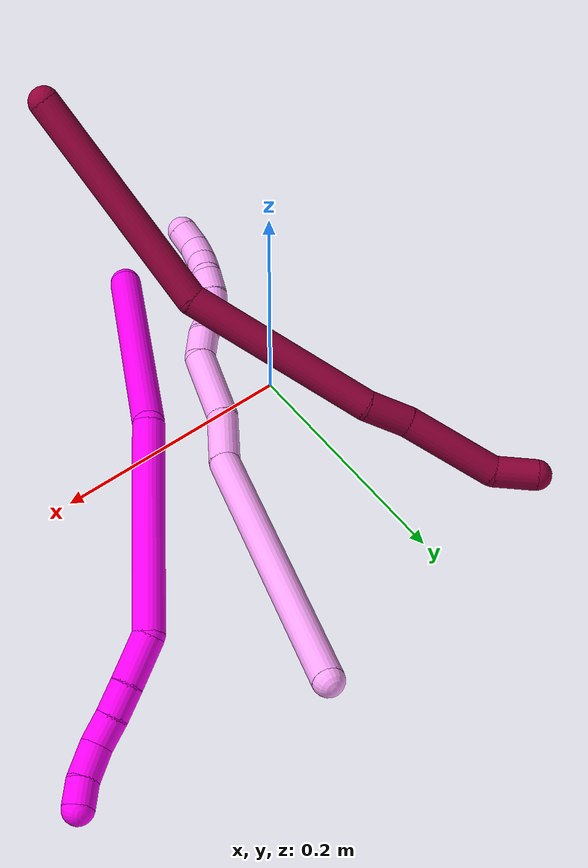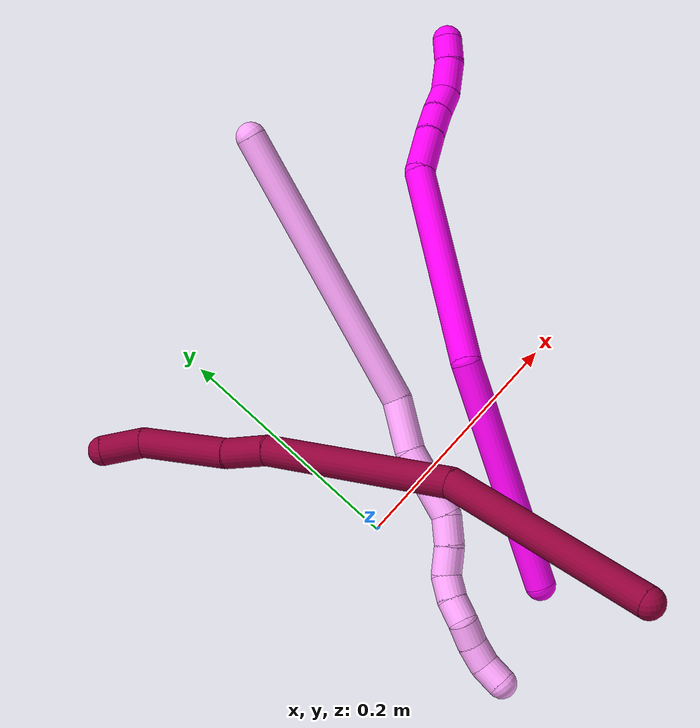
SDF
<sdf version="1.7">
 <world name="default">
  <model name="photoneo_s_sensor">
   <static>1</static>
   <pose>0 0 2 1.57079 1.57079 3.14159</pose>
   <link name="link">
    <inertial><mass>0.1</mass></inertial>
    <sensor name="sensor" type="depth">
     <update_rate>30</update_rate>
     <camera>
      <horizontal_fov>1.22</horizontal_fov>
      <image><width>1920</width><height>1200</height><format>B8G8R8</format></image>
      <clip><near>0.1</near><far>4</far></clip>
      <depth_camera><output>points</output></depth_camera>
     </camera>
     <plugin name="camera_plugin" filename="libgazebo_ros_depth_camera.so">
      <baseline>0.2</baseline>
      <alwaysOn>1</alwaysOn>
      <updateRate>0.0</updateRate>
      <cameraName>camera_ir</cameraName>
      <imageTopicName>/camera/color/image_raw</imageTopicName>
      <cameraInfoTopicName>/camera/color/camera_info</cameraInfoTopicName>
      <depthImageTopicName>/camera/depth/image_raw</depthImageTopicName>
      <depthImageCameraInfoTopicName>/camera/depth/camera_info</depthImageCameraInfoTopicName>
      <pointCloudTopicName>/camera/depth/points</pointCloudTopicName>
      <frameName>fr_optical</frameName>
      <pointCloudCutoff>0.1</pointCloudCutoff>
      <pointCloudCutoffMax>2.0</pointCloudCutoffMax>
      <distortionK1>0</distortionK1>
      <distortionK2>0</distortionK2>
      <distortionK3>0</distortionK3>
      <distortionT1>0</distortionT1>
      <distortionT2>0</distortionT2>
      <CxPrime>0</CxPrime>
      <Cx>0</Cx>
      <Cy>0</Cy>
      <focalLength>0</focalLength>
      <hackBaseline>0</hackBaseline>
     </plugin>
    </sensor>
   </link>
  </model>
  <model name="bin">
   <static>1</static>
   <link name="bottom">
    <collision name="collision-bottom">
     <pose>0 0 -0.01 0 -0 0</pose>
     <geometry><box><size>0.8 0.6 0.02</size></box></geometry>
     <surface>
      <friction><ode><mu>100</mu><mu2>100</mu2></ode></friction>
      <contact><collide_bitmask>65535</collide_bitmask></contact>
     </surface>
    </collision>
   </link>
   <link name="west_wall">
    <collision name="collision-west_wall">
     <pose>-0.41 0 0.1 0 -0 0</pose>
     <geometry><box><size>0.02 0.6 0.2</size></box></geometry>
     <surface>
      <friction><ode><mu>100</mu><mu2>100</mu2></ode></friction>
      <contact><collide_bitmask>65535</collide_bitmask></contact>
     </surface>
    </collision>
   </link>
   <link name="east_wall">
    <collision name="collision-east_wall">
     <pose>0.41 0 0.1 0 -0 0</pose>
     <geometry><box><size>0.02 0.6 0.2</size></box></geometry>
     <surface>
      <friction><ode><mu>100</mu><mu2>100</mu2></ode></friction>
      <contact><collide_bitmask>65535</collide_bitmask></contact>
     </surface>
    </collision>
   </link>
   <link name="south_wall">
    <collision name="collision-south_wall">
     <pose>0 -0.31 0.1 0 -0 0</pose>
     <geometry><box><size>0.8 0.02 0.2</size></box></geometry>
     <surface>
      <friction><ode><mu>100</mu><mu2>100</mu2></ode></friction>
      <contact><collide_bitmask>65535</collide_bitmask></contact>
     </surface>
    </collision>
   </link>
   <link name="north_wall">
    <collision name="collision-north_wall">
     <pose>0 0.31 0.1 0 -0 0</pose>
     <geometry><box><size>0.8 0.02 0.2</size></box></geometry>
     <surface>
      <friction><ode><mu>100</mu><mu2>100</mu2></ode></friction>
      <contact><collide_bitmask>65535</collide_bitmask></contact>
     </surface>
    </collision>
   </link>
  </model>
  <model name="4">
   <static>0</static>
   <link name="4">
    <collision name="collision-cylinder-e_1_1_4">
     <pose>-0.011661 -0.017821 -0.121189 2.99559 -0.094911 -1.15187</pose>
     <geometry><cylinder><radius>0.0125</radius><length>0.246092</length></cylinder></geometry>
     <surface>
      <friction><ode><mu>1.16</mu><mu2>1.16</mu2><slip1>0</slip1><slip2>0</slip2></ode></friction>
      <contact><ode><kp>1e+06</kp><kd>1</kd><max_vel>0</max_vel><min_depth>0.001</min_depth></ode></contact>
     </surface>
    </collision>
    <visual name="visual-cylinder-e_1_1_4">
     <pose>-0.011661 -0.017821 -0.121189 2.99559 -0.094911 -1.15187</pose>
     <geometry><cylinder><radius>0.0125</radius><length>0.246092</length></cylinder></geometry>
     <material><ambient>1 0.65098 0.996078 1</ambient></material>
    </visual>
    <collision name="collision-cylinder-e_2_4_5">
     <pose>-0.024443 -0.04676 -0.261564 2.61641 -0.050507 -0.187391</pose>
     <geometry><cylinder><radius>0.0125</radius><length>0.044406</length></cylinder></geometry>
     <surface>
      <friction><ode><mu>1.16</mu><mu2>1.16</mu2><slip1>0</slip1><slip2>0</slip2></ode></friction>
      <contact><ode><kp>1e+06</kp><kd>1</kd><max_vel>0</max_vel><min_depth>0.001</min_depth></ode></contact>
     </surface>
    </collision>
    <visual name="visual-cylinder-e_2_4_5">
     <pose>-0.024443 -0.04676 -0.261564 2.61641 -0.050507 -0.187391</pose>
     <geometry><cylinder><radius>0.0125</radius><length>0.044406</length></cylinder></geometry>
     <material><ambient>1 0.65098 0.996078 1</ambient></material>
    </visual>
    <collision name="collision-cylinder-e_3_5_6">
     <pose>-0.022263 -0.066869 -0.309384 2.83734 0.109538 0.68685</pose>
     <geometry><cylinder><radius>0.0125</radius><length>0.060387</length></cylinder></geometry>
     <surface>
      <friction><ode><mu>1.16</mu><mu2>1.16</mu2><slip1>0</slip1><slip2>0</slip2></ode></friction>
      <contact><ode><kp>1e+06</kp><kd>1</kd><max_vel>0</max_vel><min_depth>0.001</min_depth></ode></contact>
     </surface>
    </collision>
    <visual name="visual-cylinder-e_3_5_6">
     <pose>-0.022263 -0.066869 -0.309384 2.83734 0.109538 0.68685</pose>
     <geometry><cylinder><radius>0.0125</radius><length>0.060387</length></cylinder></geometry>
     <material><ambient>1 0.65098 0.996078 1</ambient></material>
    </visual>
    <collision name="collision-cylinder-e_4_6_7">
     <pose>-0.021193 -0.082836 -0.347954 2.52954 -0.181739 -0.56156</pose>
     <geometry><cylinder><radius>0.0125</radius><length>0.024687</length></cylinder></geometry>
     <surface>
      <friction><ode><mu>1.16</mu><mu2>1.16</mu2><slip1>0</slip1><slip2>0</slip2></ode></friction>
      <contact><ode><kp>1e+06</kp><kd>1</kd><max_vel>0</max_vel><min_depth>0.001</min_depth></ode></contact>
     </surface>
    </collision>
    <visual name="visual-cylinder-e_4_6_7">
     <pose>-0.021193 -0.082836 -0.347954 2.52954 -0.181739 -0.56156</pose>
     <geometry><cylinder><radius>0.0125</radius><length>0.024687</length></cylinder></geometry>
     <material><ambient>1 0.65098 0.996078 1</ambient></material>
    </visual>
    <collision name="collision-cylinder-e_5_7_8">
     <pose>-0.027912 -0.097386 -0.366355 2.41157 -0.37627 -0.924443</pose>
     <geometry><cylinder><radius>0.0125</radius><length>0.024427</length></cylinder></geometry>
     <surface>
      <friction><ode><mu>1.16</mu><mu2>1.16</mu2><slip1>0</slip1><slip2>0</slip2></ode></friction>
      <contact><ode><kp>1e+06</kp><kd>1</kd><max_vel>0</max_vel><min_depth>0.001</min_depth></ode></contact>
     </surface>
    </collision>
    <visual name="visual-cylinder-e_5_7_8">
     <pose>-0.027912 -0.097386 -0.366355 2.41157 -0.37627 -0.924443</pose>
     <geometry><cylinder><radius>0.0125</radius><length>0.024427</length></cylinder></geometry>
     <material><ambient>1 0.65098 0.996078 1</ambient></material>
    </visual>
    <collision name="collision-cylinder-e_6_8_9">
     <pose>-0.032231 -0.110406 -0.383206 2.56575 0.016931 0.057156</pose>
     <geometry><cylinder><radius>0.0125</radius><length>0.020001</length></cylinder></geometry>
     <surface>
      <friction><ode><mu>1.16</mu><mu2>1.16</mu2><slip1>0</slip1><slip2>0</slip2></ode></friction>
      <contact><ode><kp>1e+06</kp><kd>1</kd><max_vel>0</max_vel><min_depth>0.001</min_depth></ode></contact>
     </surface>
    </collision>
    <visual name="visual-cylinder-e_6_8_9">
     <pose>-0.032231 -0.110406 -0.383206 2.56575 0.016931 0.057156</pose>
     <geometry><cylinder><radius>0.0125</radius><length>0.020001</length></cylinder></geometry>
     <material><ambient>1 0.65098 0.996078 1</ambient></material>
    </visual>
    <collision name="collision-cylinder-e_7_9_10">
     <pose>-0.03045 -0.119923 -0.400583 2.71627 0.161839 0.718546</pose>
     <geometry><cylinder><radius>0.0125</radius><length>0.020001</length></cylinder></geometry>
     <surface>
      <friction><ode><mu>1.16</mu><mu2>1.16</mu2><slip1>0</slip1><slip2>0</slip2></ode></friction>
      <contact><ode><kp>1e+06</kp><kd>1</kd><max_vel>0</max_vel><min_depth>0.001</min_depth></ode></contact>
     </surface>
    </collision>
    <visual name="visual-cylinder-e_7_9_10">
     <pose>-0.03045 -0.119923 -0.400583 2.71627 0.161839 0.718546</pose>
     <geometry><cylinder><radius>0.0125</radius><length>0.020001</length></cylinder></geometry>
     <material><ambient>1 0.65098 0.996078 1</ambient></material>
    </visual>
    <collision name="collision-cylinder-e_8_10_11">
     <pose>-0.031013 -0.12581 -0.419164 2.95464 -0.219201 -1.73034</pose>
     <geometry><cylinder><radius>0.0125</radius><length>0.02</length></cylinder></geometry>
     <surface>
      <friction><ode><mu>1.16</mu><mu2>1.16</mu2><slip1>0</slip1><slip2>0</slip2></ode></friction>
      <contact><ode><kp>1e+06</kp><kd>1</kd><max_vel>0</max_vel><min_depth>0.001</min_depth></ode></contact>
     </surface>
    </collision>
    <visual name="visual-cylinder-e_8_10_11">
     <pose>-0.031013 -0.12581 -0.419164 2.95464 -0.219201 -1.73034</pose>
     <geometry><cylinder><radius>0.0125</radius><length>0.02</length></cylinder></geometry>
     <material><ambient>1 0.65098 0.996078 1</ambient></material>
    </visual>
    <collision name="collision-cylinder-e_9_11_12">
     <pose>-0.033527 -0.129374 -0.438594 2.9656 -0.033984 -0.380571</pose>
     <geometry><cylinder><radius>0.0125</radius><length>0.02</length></cylinder></geometry>
     <surface>
      <friction><ode><mu>1.16</mu><mu2>1.16</mu2><slip1>0</slip1><slip2>0</slip2></ode></friction>
      <contact><ode><kp>1e+06</kp><kd>1</kd><max_vel>0</max_vel><min_depth>0.001</min_depth></ode></contact>
     </surface>
    </collision>
    <visual name="visual-cylinder-e_9_11_12">
     <pose>-0.033527 -0.129374 -0.438594 2.9656 -0.033984 -0.380571</pose>
     <geometry><cylinder><radius>0.0125</radius><length>0.02</length></cylinder></geometry>
     <material><ambient>1 0.65098 0.996078 1</ambient></material>
    </visual>
    <collision name="collision-cylinder-e_10_12_2">
     <pose>-0.030937 -0.132455 -0.457902 3.0019 0.297339 2.26765</pose>
     <geometry><cylinder><radius>0.0125</radius><length>0.02</length></cylinder></geometry>
     <surface>
      <friction><ode><mu>1.16</mu><mu2>1.16</mu2><slip1>0</slip1><slip2>0</slip2></ode></friction>
      <contact><ode><kp>1e+06</kp><kd>1</kd><max_vel>0</max_vel><min_depth>0.001</min_depth></ode></contact>
     </surface>
    </collision>
    <visual name="visual-cylinder-e_10_12_2">
     <pose>-0.030937 -0.132455 -0.457902 3.0019 0.297339 2.26765</pose>
     <geometry><cylinder><radius>0.0125</radius><length>0.02</length></cylinder></geometry>
     <material><ambient>1 0.65098 0.996078 1</ambient></material>
    </visual>
    <collision name="collision-sphere-2">
     <pose>-0.028008 -0.133786 -0.46737 0 -0 0</pose>
     <geometry><sphere><radius>0.0125</radius></sphere></geometry>
     <surface>
      <friction><ode><mu>1.16</mu><mu2>1.16</mu2><slip1>0</slip1><slip2>0</slip2></ode></friction>
      <contact><ode><kp>1e+06</kp><kd>1</kd><max_vel>0</max_vel><min_depth>0.001</min_depth></ode></contact>
     </surface>
    </collision>
    <visual name="visual-sphere-2">
     <pose>-0.028008 -0.133786 -0.46737 0 -0 0</pose>
     <geometry><sphere><radius>0.0125</radius></sphere></geometry>
     <material><ambient>1 0.65098 0.996078 1</ambient></material>
    </visual>
    <collision name="collision-sphere-12">
     <pose>-0.033867 -0.131124 -0.448434 0 -0 0</pose>
     <geometry><sphere><radius>0.0125</radius></sphere></geometry>
     <surface>
      <friction><ode><mu>1.16</mu><mu2>1.16</mu2><slip1>0</slip1><slip2>0</slip2></ode></friction>
      <contact><ode><kp>1e+06</kp><kd>1</kd><max_vel>0</max_vel><min_depth>0.001</min_depth></ode></contact>
     </surface>
    </collision>
    <visual name="visual-sphere-12">
     <pose>-0.033867 -0.131124 -0.448434 0 -0 0</pose>
     <geometry><sphere><radius>0.0125</radius></sphere></geometry>
     <material><ambient>1 0.65098 0.996078 1</ambient></material>
    </visual>
    <collision name="collision-sphere-11">
     <pose>-0.033188 -0.127624 -0.428754 0 -0 0</pose>
     <geometry><sphere><radius>0.0125</radius></sphere></geometry>
     <surface>
      <friction><ode><mu>1.16</mu><mu2>1.16</mu2><slip1>0</slip1><slip2>0</slip2></ode></friction>
      <contact><ode><kp>1e+06</kp><kd>1</kd><max_vel>0</max_vel><min_depth>0.001</min_depth></ode></contact>
     </surface>
    </collision>
    <visual name="visual-sphere-11">
     <pose>-0.033188 -0.127624 -0.428754 0 -0 0</pose>
     <geometry><sphere><radius>0.0125</radius></sphere></geometry>
     <material><ambient>1 0.65098 0.996078 1</ambient></material>
    </visual>
    <collision name="collision-sphere-10">
     <pose>-0.028839 -0.123995 -0.409573 0 -0 0</pose>
     <geometry><sphere><radius>0.0125</radius></sphere></geometry>
     <surface>
      <friction><ode><mu>1.16</mu><mu2>1.16</mu2><slip1>0</slip1><slip2>0</slip2></ode></friction>
      <contact><ode><kp>1e+06</kp><kd>1</kd><max_vel>0</max_vel><min_depth>0.001</min_depth></ode></contact>
     </surface>
    </collision>
    <visual name="visual-sphere-10">
     <pose>-0.028839 -0.123995 -0.409573 0 -0 0</pose>
     <geometry><sphere><radius>0.0125</radius></sphere></geometry>
     <material><ambient>1 0.65098 0.996078 1</ambient></material>
    </visual>
    <collision name="collision-sphere-9">
     <pose>-0.032061 -0.115851 -0.391592 0 -0 0</pose>
     <geometry><sphere><radius>0.0125</radius></sphere></geometry>
     <surface>
      <friction><ode><mu>1.16</mu><mu2>1.16</mu2><slip1>0</slip1><slip2>0</slip2></ode></friction>
      <contact><ode><kp>1e+06</kp><kd>1</kd><max_vel>0</max_vel><min_depth>0.001</min_depth></ode></contact>
     </surface>
    </collision>
    <visual name="visual-sphere-9">
     <pose>-0.032061 -0.115851 -0.391592 0 -0 0</pose>
     <geometry><sphere><radius>0.0125</radius></sphere></geometry>
     <material><ambient>1 0.65098 0.996078 1</ambient></material>
    </visual>
    <collision name="collision-sphere-4">
     <pose>-0.023322 -0.035643 -0.242378 0 -0 0</pose>
     <geometry><sphere><radius>0.0125</radius></sphere></geometry>
     <surface>
      <friction><ode><mu>1.16</mu><mu2>1.16</mu2><slip1>0</slip1><slip2>0</slip2></ode></friction>
      <contact><ode><kp>1e+06</kp><kd>1</kd><max_vel>0</max_vel><min_depth>0.001</min_depth></ode></contact>
     </surface>
    </collision>
    <visual name="visual-sphere-4">
     <pose>-0.023322 -0.035643 -0.242378 0 -0 0</pose>
     <geometry><sphere><radius>0.0125</radius></sphere></geometry>
     <material><ambient>1 0.65098 0.996078 1</ambient></material>
    </visual>
    <collision name="collision-sphere-1">
     <geometry><sphere><radius>0.0125</radius></sphere></geometry>
     <surface>
      <friction><ode><mu>1.16</mu><mu2>1.16</mu2><slip1>0</slip1><slip2>0</slip2></ode></friction>
      <contact><ode><kp>1e+06</kp><kd>1</kd><max_vel>0</max_vel><min_depth>0.001</min_depth></ode></contact>
     </surface>
    </collision>
    <visual name="visual-sphere-1">
     <geometry><sphere><radius>0.0125</radius></sphere></geometry>
     <material><ambient>1 0.65098 0.996078 1</ambient></material>
    </visual>
    <collision name="collision-sphere-8">
     <pose>-0.0324 -0.104961 -0.37482 0 -0 0</pose>
     <geometry><sphere><radius>0.0125</radius></sphere></geometry>
     <surface>
      <friction><ode><mu>1.16</mu><mu2>1.16</mu2><slip1>0</slip1><slip2>0</slip2></ode></friction>
      <contact><ode><kp>1e+06</kp><kd>1</kd><max_vel>0</max_vel><min_depth>0.001</min_depth></ode></contact>
     </surface>
    </collision>
    <visual name="visual-sphere-8">
     <pose>-0.0324 -0.104961 -0.37482 0 -0 0</pose>
     <geometry><sphere><radius>0.0125</radius></sphere></geometry>
     <material><ambient>1 0.65098 0.996078 1</ambient></material>
    </visual>
    <collision name="collision-sphere-5">
     <pose>-0.025564 -0.057878 -0.280751 0 -0 0</pose>
     <geometry><sphere><radius>0.0125</radius></sphere></geometry>
     <surface>
      <friction><ode><mu>1.16</mu><mu2>1.16</mu2><slip1>0</slip1><slip2>0</slip2></ode></friction>
      <contact><ode><kp>1e+06</kp><kd>1</kd><max_vel>0</max_vel><min_depth>0.001</min_depth></ode></contact>
     </surface>
    </collision>
    <visual name="visual-sphere-5">
     <pose>-0.025564 -0.057878 -0.280751 0 -0 0</pose>
     <geometry><sphere><radius>0.0125</radius></sphere></geometry>
     <material><ambient>1 0.65098 0.996078 1</ambient></material>
    </visual>
    <collision name="collision-sphere-6">
     <pose>-0.018962 -0.075861 -0.338018 0 -0 0</pose>
     <geometry><sphere><radius>0.0125</radius></sphere></geometry>
     <surface>
      <friction><ode><mu>1.16</mu><mu2>1.16</mu2><slip1>0</slip1><slip2>0</slip2></ode></friction>
      <contact><ode><kp>1e+06</kp><kd>1</kd><max_vel>0</max_vel><min_depth>0.001</min_depth></ode></contact>
     </surface>
    </collision>
    <visual name="visual-sphere-6">
     <pose>-0.018962 -0.075861 -0.338018 0 -0 0</pose>
     <geometry><sphere><radius>0.0125</radius></sphere></geometry>
     <material><ambient>1 0.65098 0.996078 1</ambient></material>
    </visual>
    <collision name="collision-sphere-7">
     <pose>-0.023424 -0.089811 -0.357891 0 -0 0</pose>
     <geometry><sphere><radius>0.0125</radius></sphere></geometry>
     <surface>
      <friction><ode><mu>1.16</mu><mu2>1.16</mu2><slip1>0</slip1><slip2>0</slip2></ode></friction>
      <contact><ode><kp>1e+06</kp><kd>1</kd><max_vel>0</max_vel><min_depth>0.001</min_depth></ode></contact>
     </surface>
    </collision>
    <visual name="visual-sphere-7">
     <pose>-0.023424 -0.089811 -0.357891 0 -0 0</pose>
     <geometry><sphere><radius>0.0125</radius></sphere></geometry>
     <material><ambient>1 0.65098 0.996078 1</ambient></material>
    </visual>
    <inertial>
     <pose>-0.019335 -0.054567 -0.239299 0 -0 0</pose>
     <mass>0.5</mass>
     <inertia>
      <ixx>-0.000594</ixx>
      <ixy>0</ixy>
      <ixz>0</ixz>
      <iyy>-0.001655</iyy>
      <iyz>0</iyz>
      <izz>0.000278</izz>
     </inertia>
    </inertial>
   </link>
   <pose>0.165122 0.288507 0.076947 -1.22355 -0.934334 -0.423183</pose>
  </model>
  <model name="8">
   <static>0</static>
   <link name="8">
    <collision name="collision-cylinder-e_1_1_4">
     <pose>-0.038115 0.083917 -0.02004 -1.80522 -0.415994 0.522546</pose>
     <geometry><cylinder><radius>0.0125</radius><length>0.188643</length></cylinder></geometry>
     <surface>
      <friction><ode><mu>1.16</mu><mu2>1.16</mu2><slip1>0</slip1><slip2>0</slip2></ode></friction>
      <contact><ode><kp>1e+06</kp><kd>1</kd><max_vel>0</max_vel><min_depth>0.001</min_depth></ode></contact>
     </surface>
    </collision>
    <visual name="visual-cylinder-e_1_1_4">
     <pose>-0.038115 0.083917 -0.02004 -1.80522 -0.415994 0.522546</pose>
     <geometry><cylinder><radius>0.0125</radius><length>0.188643</length></cylinder></geometry>
     <material><ambient>0.584314 0 0.227451 1</ambient></material>
    </visual>
    <collision name="collision-cylinder-e_2_4_5">
     <pose>-0.082071 0.24745 -0.044423 -1.62528 -0.073122 0.077214</pose>
     <geometry><cylinder><radius>0.0125</radius><length>0.159894</length></cylinder></geometry>
     <surface>
      <friction><ode><mu>1.16</mu><mu2>1.16</mu2><slip1>0</slip1><slip2>0</slip2></ode></friction>
      <contact><ode><kp>1e+06</kp><kd>1</kd><max_vel>0</max_vel><min_depth>0.001</min_depth></ode></contact>
     </surface>
    </collision>
    <visual name="visual-cylinder-e_2_4_5">
     <pose>-0.082071 0.24745 -0.044423 -1.62528 -0.073122 0.077214</pose>
     <geometry><cylinder><radius>0.0125</radius><length>0.159894</length></cylinder></geometry>
     <material><ambient>0.584314 0 0.227451 1</ambient></material>
    </visual>
    <collision name="collision-cylinder-e_3_5_6">
     <pose>-0.087451 0.345073 -0.046073 -1.42243 0.025309 -0.021807</pose>
     <geometry><cylinder><radius>0.0125</radius><length>0.036428</length></cylinder></geometry>
     <surface>
      <friction><ode><mu>1.16</mu><mu2>1.16</mu2><slip1>0</slip1><slip2>0</slip2></ode></friction>
      <contact><ode><kp>1e+06</kp><kd>1</kd><max_vel>0</max_vel><min_depth>0.001</min_depth></ode></contact>
     </surface>
    </collision>
    <visual name="visual-cylinder-e_3_5_6">
     <pose>-0.087451 0.345073 -0.046073 -1.42243 0.025309 -0.021807</pose>
     <geometry><cylinder><radius>0.0125</radius><length>0.036428</length></cylinder></geometry>
     <material><ambient>0.584314 0 0.227451 1</ambient></material>
    </visual>
    <collision name="collision-cylinder-e_4_6_7">
     <pose>-0.089891 0.402674 -0.043722 -1.57939 -0.073149 0.07378</pose>
     <geometry><cylinder><radius>0.0125</radius><length>0.079401</length></cylinder></geometry>
     <surface>
      <friction><ode><mu>1.16</mu><mu2>1.16</mu2><slip1>0</slip1><slip2>0</slip2></ode></friction>
      <contact><ode><kp>1e+06</kp><kd>1</kd><max_vel>0</max_vel><min_depth>0.001</min_depth></ode></contact>
     </surface>
    </collision>
    <visual name="visual-cylinder-e_4_6_7">
     <pose>-0.089891 0.402674 -0.043722 -1.57939 -0.073149 0.07378</pose>
     <geometry><cylinder><radius>0.0125</radius><length>0.079401</length></cylinder></geometry>
     <material><ambient>0.584314 0 0.227451 1</ambient></material>
    </visual>
    <collision name="collision-cylinder-e_5_7_2">
     <pose>-0.086857 0.458899 -0.0417 -1.42976 0.339636 -0.295518</pose>
     <geometry><cylinder><radius>0.0125</radius><length>0.035634</length></cylinder></geometry>
     <surface>
      <friction><ode><mu>1.16</mu><mu2>1.16</mu2><slip1>0</slip1><slip2>0</slip2></ode></friction>
      <contact><ode><kp>1e+06</kp><kd>1</kd><max_vel>0</max_vel><min_depth>0.001</min_depth></ode></contact>
     </surface>
    </collision>
    <visual name="visual-cylinder-e_5_7_2">
     <pose>-0.086857 0.458899 -0.0417 -1.42976 0.339636 -0.295518</pose>
     <geometry><cylinder><radius>0.0125</radius><length>0.035634</length></cylinder></geometry>
     <material><ambient>0.584314 0 0.227451 1</ambient></material>
    </visual>
    <collision name="collision-sphere-2">
     <pose>-0.080921 0.475532 -0.039339 0 -0 0</pose>
     <geometry><sphere><radius>0.0125</radius></sphere></geometry>
     <surface>
      <friction><ode><mu>1.16</mu><mu2>1.16</mu2><slip1>0</slip1><slip2>0</slip2></ode></friction>
      <contact><ode><kp>1e+06</kp><kd>1</kd><max_vel>0</max_vel><min_depth>0.001</min_depth></ode></contact>
     </surface>
    </collision>
    <visual name="visual-sphere-2">
     <pose>-0.080921 0.475532 -0.039339 0 -0 0</pose>
     <geometry><sphere><radius>0.0125</radius></sphere></geometry>
     <material><ambient>0.584314 0 0.227451 1</ambient></material>
    </visual>
    <collision name="collision-sphere-7">
     <pose>-0.092793 0.442267 -0.044062 0 -0 0</pose>
     <geometry><sphere><radius>0.0125</radius></sphere></geometry>
     <surface>
      <friction><ode><mu>1.16</mu><mu2>1.16</mu2><slip1>0</slip1><slip2>0</slip2></ode></friction>
      <contact><ode><kp>1e+06</kp><kd>1</kd><max_vel>0</max_vel><min_depth>0.001</min_depth></ode></contact>
     </surface>
    </collision>
    <visual name="visual-sphere-7">
     <pose>-0.092793 0.442267 -0.044062 0 -0 0</pose>
     <geometry><sphere><radius>0.0125</radius></sphere></geometry>
     <material><ambient>0.584314 0 0.227451 1</ambient></material>
    </visual>
    <collision name="collision-sphere-6">
     <pose>-0.08699 0.363081 -0.043381 0 -0 0</pose>
     <geometry><sphere><radius>0.0125</radius></sphere></geometry>
     <surface>
      <friction><ode><mu>1.16</mu><mu2>1.16</mu2><slip1>0</slip1><slip2>0</slip2></ode></friction>
      <contact><ode><kp>1e+06</kp><kd>1</kd><max_vel>0</max_vel><min_depth>0.001</min_depth></ode></contact>
     </surface>
    </collision>
    <visual name="visual-sphere-6">
     <pose>-0.08699 0.363081 -0.043381 0 -0 0</pose>
     <geometry><sphere><radius>0.0125</radius></sphere></geometry>
     <material><ambient>0.584314 0 0.227451 1</ambient></material>
    </visual>
    <collision name="collision-sphere-5">
     <pose>-0.087912 0.327065 -0.048765 0 -0 0</pose>
     <geometry><sphere><radius>0.0125</radius></sphere></geometry>
     <surface>
      <friction><ode><mu>1.16</mu><mu2>1.16</mu2><slip1>0</slip1><slip2>0</slip2></ode></friction>
      <contact><ode><kp>1e+06</kp><kd>1</kd><max_vel>0</max_vel><min_depth>0.001</min_depth></ode></contact>
     </surface>
    </collision>
    <visual name="visual-sphere-5">
     <pose>-0.087912 0.327065 -0.048765 0 -0 0</pose>
     <geometry><sphere><radius>0.0125</radius></sphere></geometry>
     <material><ambient>0.584314 0 0.227451 1</ambient></material>
    </visual>
    <collision name="collision-sphere-1">
     <geometry><sphere><radius>0.0125</radius></sphere></geometry>
     <surface>
      <friction><ode><mu>1.16</mu><mu2>1.16</mu2><slip1>0</slip1><slip2>0</slip2></ode></friction>
      <contact><ode><kp>1e+06</kp><kd>1</kd><max_vel>0</max_vel><min_depth>0.001</min_depth></ode></contact>
     </surface>
    </collision>
    <visual name="visual-sphere-1">
     <geometry><sphere><radius>0.0125</radius></sphere></geometry>
     <material><ambient>0.584314 0 0.227451 1</ambient></material>
    </visual>
    <collision name="collision-sphere-4">
     <pose>-0.07623 0.167835 -0.040081 0 -0 0</pose>
     <geometry><sphere><radius>0.0125</radius></sphere></geometry>
     <surface>
      <friction><ode><mu>1.16</mu><mu2>1.16</mu2><slip1>0</slip1><slip2>0</slip2></ode></friction>
      <contact><ode><kp>1e+06</kp><kd>1</kd><max_vel>0</max_vel><min_depth>0.001</min_depth></ode></contact>
     </surface>
    </collision>
    <visual name="visual-sphere-4">
     <pose>-0.07623 0.167835 -0.040081 0 -0 0</pose>
     <geometry><sphere><radius>0.0125</radius></sphere></geometry>
     <material><ambient>0.584314 0 0.227451 1</ambient></material>
    </visual>
    <inertial>
     <pose>-0.067462 0.232584 -0.035038 0 -0 0</pose>
     <mass>0.5</mass>
     <inertia>
      <ixx>0.00113</ixx>
      <ixy>0</ixy>
      <ixz>0</ixz>
      <iyy>0.000306</iyy>
      <iyz>0</iyz>
      <izz>-0.000652</izz>
     </inertia>
    </inertial>
   </link>
   <pose>0.085378 -0.173245 0.240446 -2.46974 -0.934872 -3.07722</pose>
  </model>
  <model name="10">
   <static>0</static>
   <link name="10">
    <collision name="collision-cylinder-e_1_1_4">
     <pose>0.030665 0.030675 0.085774 -0.343452 0.324718 -0.056802</pose>
     <geometry><cylinder><radius>0.0125</radius><length>0.192234</length></cylinder></geometry>
     <surface>
      <friction><ode><mu>1.16</mu><mu2>1.16</mu2><slip1>0</slip1><slip2>0</slip2></ode></friction>
      <contact><ode><kp>1e+06</kp><kd>1</kd><max_vel>0</max_vel><min_depth>0.001</min_depth></ode></contact>
     </surface>
    </collision>
    <visual name="visual-cylinder-e_1_1_4">
     <pose>0.030665 0.030675 0.085774 -0.343452 0.324718 -0.056802</pose>
     <geometry><cylinder><radius>0.0125</radius><length>0.192234</length></cylinder></geometry>
     <material><ambient>1 0 0.964706 1</ambient></material>
    </visual>
    <collision name="collision-cylinder-e_2_4_5">
     <pose>0.103002 0.117867 0.21927 -0.869565 0.513037 -0.242439</pose>
     <geometry><cylinder><radius>0.0125</radius><length>0.1698</length></cylinder></geometry>
     <surface>
      <friction><ode><mu>1.16</mu><mu2>1.16</mu2><slip1>0</slip1><slip2>0</slip2></ode></friction>
      <contact><ode><kp>1e+06</kp><kd>1</kd><max_vel>0</max_vel><min_depth>0.001</min_depth></ode></contact>
     </surface>
    </collision>
    <visual name="visual-cylinder-e_2_4_5">
     <pose>0.103002 0.117867 0.21927 -0.869565 0.513037 -0.242439</pose>
     <geometry><cylinder><radius>0.0125</radius><length>0.1698</length></cylinder></geometry>
     <material><ambient>1 0 0.964706 1</ambient></material>
    </visual>
    <collision name="collision-cylinder-e_3_5_6">
     <pose>0.160262 0.185112 0.271595 -1.16554 0.928011 -0.637246</pose>
     <geometry><cylinder><radius>0.0125</radius><length>0.038951</length></cylinder></geometry>
     <surface>
      <friction><ode><mu>1.16</mu><mu2>1.16</mu2><slip1>0</slip1><slip2>0</slip2></ode></friction>
      <contact><ode><kp>1e+06</kp><kd>1</kd><max_vel>0</max_vel><min_depth>0.001</min_depth></ode></contact>
     </surface>
    </collision>
    <visual name="visual-cylinder-e_3_5_6">
     <pose>0.160262 0.185112 0.271595 -1.16554 0.928011 -0.637246</pose>
     <geometry><cylinder><radius>0.0125</radius><length>0.038951</length></cylinder></geometry>
     <material><ambient>1 0 0.964706 1</ambient></material>
    </visual>
    <collision name="collision-cylinder-e_4_6_7">
     <pose>0.186033 0.203055 0.278308 -1.2862 0.934874 -0.723219</pose>
     <geometry><cylinder><radius>0.0125</radius><length>0.025313</length></cylinder></geometry>
     <surface>
      <friction><ode><mu>1.16</mu><mu2>1.16</mu2><slip1>0</slip1><slip2>0</slip2></ode></friction>
      <contact><ode><kp>1e+06</kp><kd>1</kd><max_vel>0</max_vel><min_depth>0.001</min_depth></ode></contact>
     </surface>
    </collision>
    <visual name="visual-cylinder-e_4_6_7">
     <pose>0.186033 0.203055 0.278308 -1.2862 0.934874 -0.723219</pose>
     <geometry><cylinder><radius>0.0125</radius><length>0.025313</length></cylinder></geometry>
     <material><ambient>1 0 0.964706 1</ambient></material>
    </visual>
    <collision name="collision-cylinder-e_5_7_8">
     <pose>0.206234 0.216854 0.28152 -1.4052 0.982999 -0.851147</pose>
     <geometry><cylinder><radius>0.0125</radius><length>0.024079</length></cylinder></geometry>
     <surface>
      <friction><ode><mu>1.16</mu><mu2>1.16</mu2><slip1>0</slip1><slip2>0</slip2></ode></friction>
      <contact><ode><kp>1e+06</kp><kd>1</kd><max_vel>0</max_vel><min_depth>0.001</min_depth></ode></contact>
     </surface>
    </collision>
    <visual name="visual-cylinder-e_5_7_8">
     <pose>0.206234 0.216854 0.28152 -1.4052 0.982999 -0.851147</pose>
     <geometry><cylinder><radius>0.0125</radius><length>0.024079</length></cylinder></geometry>
     <material><ambient>1 0 0.964706 1</ambient></material>
    </visual>
    <collision name="collision-cylinder-e_6_8_9">
     <pose>0.226906 0.22965 0.289703 -0.719992 0.846729 -0.336023</pose>
     <geometry><cylinder><radius>0.0125</radius><length>0.028443</length></cylinder></geometry>
     <surface>
      <friction><ode><mu>1.16</mu><mu2>1.16</mu2><slip1>0</slip1><slip2>0</slip2></ode></friction>
      <contact><ode><kp>1e+06</kp><kd>1</kd><max_vel>0</max_vel><min_depth>0.001</min_depth></ode></contact>
     </surface>
    </collision>
    <visual name="visual-cylinder-e_6_8_9">
     <pose>0.226906 0.22965 0.289703 -0.719992 0.846729 -0.336023</pose>
     <geometry><cylinder><radius>0.0125</radius><length>0.028443</length></cylinder></geometry>
     <material><ambient>1 0 0.964706 1</ambient></material>
    </visual>
    <collision name="collision-cylinder-e_7_9_2">
     <pose>0.244027 0.24184 0.302667 -0.793499 0.657011 -0.283697</pose>
     <geometry><cylinder><radius>0.0125</radius><length>0.021181</length></cylinder></geometry>
     <surface>
      <friction><ode><mu>1.16</mu><mu2>1.16</mu2><slip1>0</slip1><slip2>0</slip2></ode></friction>
      <contact><ode><kp>1e+06</kp><kd>1</kd><max_vel>0</max_vel><min_depth>0.001</min_depth></ode></contact>
     </surface>
    </collision>
    <visual name="visual-cylinder-e_7_9_2">
     <pose>0.244027 0.24184 0.302667 -0.793499 0.657011 -0.283697</pose>
     <geometry><cylinder><radius>0.0125</radius><length>0.021181</length></cylinder></geometry>
     <material><ambient>1 0 0.964706 1</ambient></material>
    </visual>
    <collision name="collision-sphere-2">
     <pose>0.250495 0.247817 0.308548 0 -0 0</pose>
     <geometry><sphere><radius>0.0125</radius></sphere></geometry>
     <surface>
      <friction><ode><mu>1.16</mu><mu2>1.16</mu2><slip1>0</slip1><slip2>0</slip2></ode></friction>
      <contact><ode><kp>1e+06</kp><kd>1</kd><max_vel>0</max_vel><min_depth>0.001</min_depth></ode></contact>
     </surface>
    </collision>
    <visual name="visual-sphere-2">
     <pose>0.250495 0.247817 0.308548 0 -0 0</pose>
     <geometry><sphere><radius>0.0125</radius></sphere></geometry>
     <material><ambient>1 0 0.964706 1</ambient></material>
    </visual>
    <collision name="collision-sphere-9">
     <pose>0.237559 0.235862 0.296785 0 -0 0</pose>
     <geometry><sphere><radius>0.0125</radius></sphere></geometry>
     <surface>
      <friction><ode><mu>1.16</mu><mu2>1.16</mu2><slip1>0</slip1><slip2>0</slip2></ode></friction>
      <contact><ode><kp>1e+06</kp><kd>1</kd><max_vel>0</max_vel><min_depth>0.001</min_depth></ode></contact>
     </surface>
    </collision>
    <visual name="visual-sphere-9">
     <pose>0.237559 0.235862 0.296785 0 -0 0</pose>
     <geometry><sphere><radius>0.0125</radius></sphere></geometry>
     <material><ambient>1 0 0.964706 1</ambient></material>
    </visual>
    <collision name="collision-sphere-4">
     <pose>0.061331 0.06135 0.171548 0 -0 0</pose>
     <geometry><sphere><radius>0.0125</radius></sphere></geometry>
     <surface>
      <friction><ode><mu>1.16</mu><mu2>1.16</mu2><slip1>0</slip1><slip2>0</slip2></ode></friction>
      <contact><ode><kp>1e+06</kp><kd>1</kd><max_vel>0</max_vel><min_depth>0.001</min_depth></ode></contact>
     </surface>
    </collision>
    <visual name="visual-sphere-4">
     <pose>0.061331 0.06135 0.171548 0 -0 0</pose>
     <geometry><sphere><radius>0.0125</radius></sphere></geometry>
     <material><ambient>1 0 0.964706 1</ambient></material>
    </visual>
    <collision name="collision-sphere-1">
     <geometry><sphere><radius>0.0125</radius></sphere></geometry>
     <surface>
      <friction><ode><mu>1.16</mu><mu2>1.16</mu2><slip1>0</slip1><slip2>0</slip2></ode></friction>
      <contact><ode><kp>1e+06</kp><kd>1</kd><max_vel>0</max_vel><min_depth>0.001</min_depth></ode></contact>
     </surface>
    </collision>
    <visual name="visual-sphere-1">
     <geometry><sphere><radius>0.0125</radius></sphere></geometry>
     <material><ambient>1 0 0.964706 1</ambient></material>
    </visual>
    <collision name="collision-sphere-8">
     <pose>0.216252 0.223439 0.28262 0 -0 0</pose>
     <geometry><sphere><radius>0.0125</radius></sphere></geometry>
     <surface>
      <friction><ode><mu>1.16</mu><mu2>1.16</mu2><slip1>0</slip1><slip2>0</slip2></ode></friction>
      <contact><ode><kp>1e+06</kp><kd>1</kd><max_vel>0</max_vel><min_depth>0.001</min_depth></ode></contact>
     </surface>
    </collision>
    <visual name="visual-sphere-8">
     <pose>0.216252 0.223439 0.28262 0 -0 0</pose>
     <geometry><sphere><radius>0.0125</radius></sphere></geometry>
     <material><ambient>1 0 0.964706 1</ambient></material>
    </visual>
    <collision name="collision-sphere-5">
     <pose>0.144673 0.174383 0.266993 0 -0 0</pose>
     <geometry><sphere><radius>0.0125</radius></sphere></geometry>
     <surface>
      <friction><ode><mu>1.16</mu><mu2>1.16</mu2><slip1>0</slip1><slip2>0</slip2></ode></friction>
      <contact><ode><kp>1e+06</kp><kd>1</kd><max_vel>0</max_vel><min_depth>0.001</min_depth></ode></contact>
     </surface>
    </collision>
    <visual name="visual-sphere-5">
     <pose>0.144673 0.174383 0.266993 0 -0 0</pose>
     <geometry><sphere><radius>0.0125</radius></sphere></geometry>
     <material><ambient>1 0 0.964706 1</ambient></material>
    </visual>
    <collision name="collision-sphere-6">
     <pose>0.17585 0.19584 0.276198 0 -0 0</pose>
     <geometry><sphere><radius>0.0125</radius></sphere></geometry>
     <surface>
      <friction><ode><mu>1.16</mu><mu2>1.16</mu2><slip1>0</slip1><slip2>0</slip2></ode></friction>
      <contact><ode><kp>1e+06</kp><kd>1</kd><max_vel>0</max_vel><min_depth>0.001</min_depth></ode></contact>
     </surface>
    </collision>
    <visual name="visual-sphere-6">
     <pose>0.17585 0.19584 0.276198 0 -0 0</pose>
     <geometry><sphere><radius>0.0125</radius></sphere></geometry>
     <material><ambient>1 0 0.964706 1</ambient></material>
    </visual>
    <collision name="collision-sphere-7">
     <pose>0.196215 0.210269 0.280419 0 -0 0</pose>
     <geometry><sphere><radius>0.0125</radius></sphere></geometry>
     <surface>
      <friction><ode><mu>1.16</mu><mu2>1.16</mu2><slip1>0</slip1><slip2>0</slip2></ode></friction>
      <contact><ode><kp>1e+06</kp><kd>1</kd><max_vel>0</max_vel><min_depth>0.001</min_depth></ode></contact>
     </surface>
    </collision>
    <visual name="visual-sphere-7">
     <pose>0.196215 0.210269 0.280419 0 -0 0</pose>
     <geometry><sphere><radius>0.0125</radius></sphere></geometry>
     <material><ambient>1 0 0.964706 1</ambient></material>
    </visual>
    <inertial>
     <pose>0.101849 0.110273 0.185547 0 -0 0</pose>
     <mass>0.5</mass>
     <inertia>
      <ixx>0.000821</ixx>
      <ixy>0</ixy>
      <ixz>0</ixz>
      <iyy>0.000771</iyy>
      <iyz>0</iyz>
      <izz>-0.000858</izz>
     </inertia>
    </inertial>
   </link>
   <pose>0.054348 -0.127504 0.049042 -0.910998 0.119856 -0.123779</pose>
  </model>
 </world>
</sdf>
